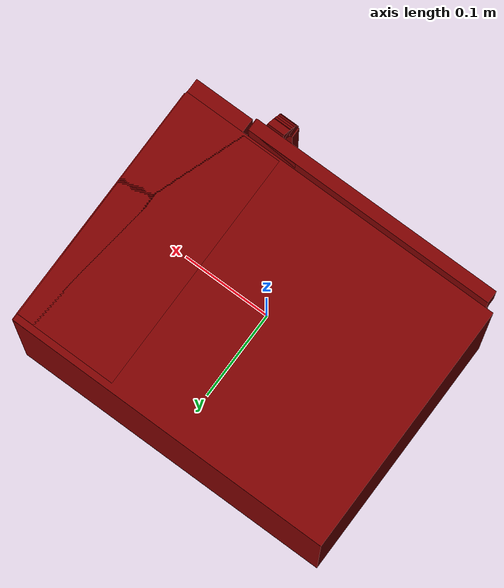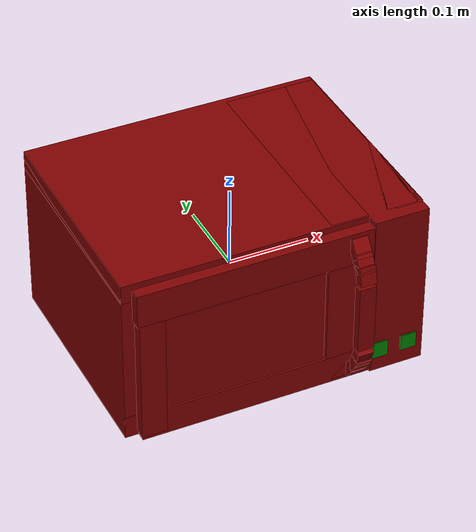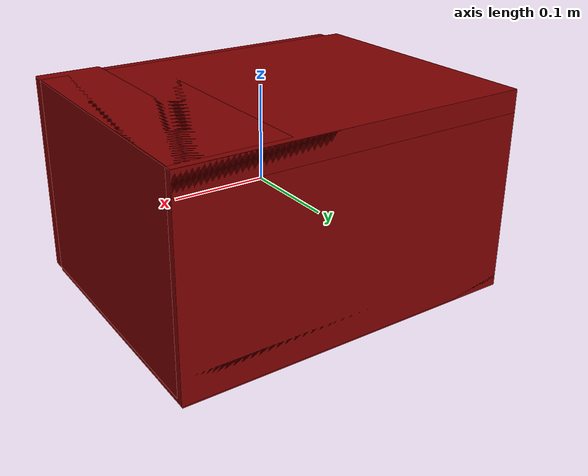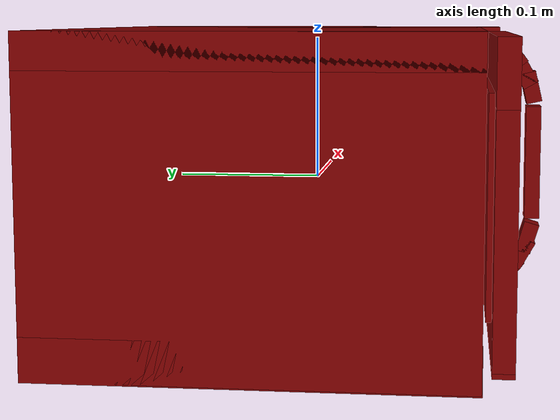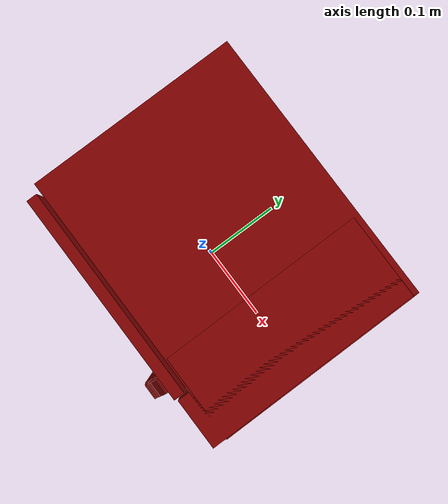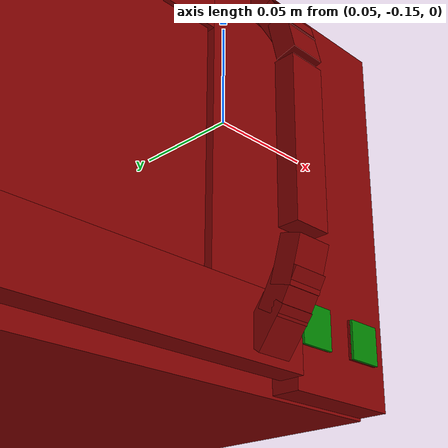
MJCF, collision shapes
<mujoco model="model">
  <compiler angle="radian"/>
  <asset>
    <mesh file="visuals/door.obj" name="door_vis"/>
    <mesh file="visuals/door_Clear.obj" name="door_Clear_vis"/>
    <mesh file="visuals/Body001.obj" name="Body001_vis"/>
    <mesh file="visuals/Button001.obj" name="Button001_vis"/>
    <mesh file="visuals/Button002.obj" name="Button002_vis"/>
    <mesh file="visuals/Disc001.obj" name="Disc001_vis"/>
    <texture file="visuals/T_BC001.png" name="Body001_material" type="2d"/>
    <material name="Body001_material" rgba="1 1 1 1.0" texture="Body001_material" shininess="0.4472135901451111" specular="0.3103448502657381"/>
    <texture file="visuals/T_BC001.png" name="door_material" type="2d"/>
    <material name="door_material" rgba="1 1 1 1.0" texture="door_material" shininess="0.4472135901451111" specular="0.3103448502657381"/>
    <texture file="visuals/T_BC001.png" name="door_Clear_material" type="2d"/>
    <material name="door_Clear_material" rgba="1 1 1 0.8160355687141418" texture="door_Clear_material" shininess="0.5" specular="0.3103448502657381"/>
    <texture file="visuals/T_BC001.png" name="Button001_material" type="2d"/>
    <material name="Button001_material" rgba="1 1 1 1.0" texture="Button001_material" shininess="0.4472135901451111" specular="0.3103448502657381"/>
    <texture file="visuals/T_BC001.png" name="Button002_material" type="2d"/>
    <material name="Button002_material" rgba="1 1 1 1.0" texture="Button002_material" shininess="0.4472135901451111" specular="0.3103448502657381"/>
    <texture file="visuals/T_BC001.png" name="Disc001_material" type="2d"/>
    <material name="Disc001_material" rgba="1 1 1 1.0" texture="Disc001_material" shininess="0.4472135901451111" specular="0.3103448502657381"/>
  </asset>
  <default>
    <default class="visual">
      <geom conaffinity="0" contype="0" group="1" type="mesh"/>
    </default>
    <default class="collision">
      <geom group="0" rgba="0.5 0 0 0.5"/>
    </default>
    <default class="spawn">
      <geom group="0" rgba="1 1 1 0.5" contype="0" conaffinity="0"/>
      <site group="0" rgba="1 1 1 0.5"/>
    </default>
    <default class="region">
      <geom group="1" conaffinity="0" contype="0" rgba="0 1 0 0"/>
    </default>
  </default>
  <worldbody>
    <body>
      <body name="object">
        <geom class="collision" type="box" pos="-0.038322221487760544 0.01331232488155365 -0.06846892833709717" size="0.08991152793169022 0.08991152793169022 0.0033757351338863373" quat="1.0 0.0 0.0 0.0" name="tray" rgba="0 1 0 0.5"/>
        <geom class="collision" type="box" pos="0.16356220841407776 -0.13681288063526154 -0.07364647090435028" size="0.009857509285211563 0.0006622439250349998 0.0102011077105999" quat="1.0 0.0 0.0 0.0" name="stop_button" rgba="0.0 0.5 0 0.5"/>
        <geom class="collision" type="box" pos="0.1264706701040268 -0.13681288063526154 -0.0734160840511322" size="0.010131612420082092 0.0006923375185579062 0.010516528971493244" quat="1.0 0.0 0.0 0.0" name="start_button" rgba="0.0 0.5 0 0.5"/>
        <geom mesh="Body001_vis" type="mesh" solimp="0.998 0.998 0.001" solref="0.001 1" density="100" friction="0.95 0.3 0.1" class="visual" material="Body001_material"/>
        <geom class="collision" type="box" pos="0.14995276927947998 0.011686988174915314 0.0007714279927313328" size="0.03383536636829376 0.1448349803686142 0.1061663031578064" quat="1.0 0.0 0.0 0.0"/>
        <geom class="collision" type="box" pos="-5.488097667694092e-05 0.14237293601036072 0.0006024762988090515" size="0.18502965569496155 0.02169918827712536 0.10611280798912048" quat="1.0 0.0 0.0 0.0"/>
        <geom class="collision" type="box" pos="0.1275446116924286 0.020843293517827988 0.002690589288249612" size="0.05753994360566139 0.13580413162708282 0.10424714535474777" quat="1.0 0.0 0.0 0.0"/>
        <geom class="collision" type="box" pos="-0.0005093887448310852 0.023414507508277893 -0.09263180941343307" size="0.1845751404762268 0.14065761864185333 0.014305923134088516" quat="1.0 0.0 0.0 0.0"/>
        <geom class="collision" type="box" pos="-0.17161764204502106 0.02357851341366768 0.0003283638507127762" size="0.01346692442893982 0.14049357175827026 0.1064658984541893" quat="1.0 0.0 0.0 0.0"/>
        <geom class="collision" type="box" pos="-0.0005093961954116821 0.023414507508277893 0.09519889950752258" size="0.184575155377388 0.14065761864185333 0.011738832108676434" quat="1.0 0.0 0.0 0.0"/>
        <body name="door">
          <joint axis="0.0 0.0 1.0" pos="-0.17331981658935547 -0.12688307464122772 0.0017627356573939323" limited="true" name="microjoint" range="-1.5707963267948966 0.0" type="hinge" damping="1" frictionloss="1" armature=".01" stiffness="0.05"/>
          <geom mesh="door_vis" type="mesh" solimp="0.998 0.998 0.001" solref="0.001 1" density="100" friction="0.95 0.3 0.1" class="visual" material="door_material"/>
          <geom class="collision" type="box" pos="0.09214727580547333 -0.15892517566680908 0.002447914332151413" size="0.010407112538814545 0.005718341562896967 0.043834466487169266" quat="1.0 0.0 0.0 0.0" name="door_handle"/>
          <geom class="collision" type="box" pos="0.09255407005548477 -0.15091237425804138 -0.0687282606959343" size="0.00994036439806223 0.01179773174226284 0.0063987658359110355" quat="0.864357054233551 -0.5028786063194275 6.948563395781093e-07 7.785951083860709e-08"/>
          <geom class="collision" type="box" pos="-0.15737035870552063 -0.12983489036560059 -0.011614538729190826" size="0.015452967025339603 0.007014425937086344 0.08402258902788162" quat="1.0 0.0 0.0 0.0"/>
          <geom class="collision" type="box" pos="0.08528551459312439 -0.12983489036560059 0.0034724343568086624" size="0.028720015659928322 0.007014427799731493 0.09910953789949417" quat="1.0 0.0 0.0 0.0"/>
          <geom class="collision" type="box" pos="-0.02812574803829193 -0.1298348754644394 -0.08159355819225311" size="0.14378277957439423 0.007014445494860411 0.01768413744866848" quat="1.0 0.0 0.0 0.0"/>
          <geom class="collision" type="box" pos="0.09255407005548477 -0.1414509117603302 -0.08252759277820587" size="0.00994036439806223 0.01179773174226284 0.0068750446662306786" quat="0.8963796496391296 -0.443287193775177 3.6028140470989456e-07 1.4993769070770213e-07"/>
          <geom class="collision" type="box" pos="0.09255407005548477 -0.1560104340314865 -0.056768618524074554" size="0.00994036439806223 0.01179773174226284 0.005911976099014282" quat="0.8013164401054382 -0.5982407331466675 6.814300945734431e-07 1.566538401220896e-07"/>
          <geom class="collision" type="box" pos="-0.03087412565946579 -0.1298348754644394 0.08280901610851288" size="0.1440674066543579 0.007014445494860411 0.021138016134500504" quat="1.0 0.0 0.0 0.0"/>
          <geom class="collision" type="box" pos="0.09255407005548477 -0.15091237425804138 0.07276289165019989" size="0.00994036439806223 0.01179773174226284 0.0063987658359110355" quat="9.661798827664825e-08 -6.952240596547199e-07 -0.5028786063194275 0.864357054233551"/>
          <geom class="collision" type="box" pos="0.09255407005548477 -0.1414509117603302 0.08656223118305206" size="0.00994036439806223 0.01179773174226284 0.0068750446662306786" quat="-2.159216592190205e-07 -6.069331561775471e-07 -0.4432871639728546 0.8963796496391296"/>
          <geom class="collision" type="box" pos="0.09255407005548477 -0.1567826122045517 0.06077610328793526" size="0.00994036439806223 0.01179773174226284 0.005911975167691708" quat="9.991788374463795e-08 -7.618554604960082e-07 -0.6223275661468506 0.7827569246292114"/>
          <body name="door_Clear">
            <geom mesh="door_Clear_vis" type="mesh" solimp="0.998 0.998 0.001" solref="0.001 1" density="100" friction="0.95 0.3 0.1" class="visual" material="door_Clear_material"/>
            <geom class="collision" type="box" pos="-0.04511549323797226 -0.12675240635871887 -0.000756354071199894" size="0.09979288280010223 0.00758172944188118 0.07034865766763687" quat="1.0 0.0 0.0 0.0"/>
          </body>
        </body>
        <body name="Button001">
          <joint axis="0.0 1.0 0.0" pos="0.12650269269943237 -0.13561950623989105 -0.08417055010795593" limited="true" name="Button001_joint" range="0.0 0.0007000000000000001" type="slide" damping="1" frictionloss="1" armature=".01" stiffness="0.05"/>
          <geom mesh="Button001_vis" type="mesh" solimp="0.998 0.998 0.001" solref="0.001 1" density="100" friction="0.95 0.3 0.1" class="visual" material="Button001_material"/>
          <geom class="collision" type="box" pos="0.12613829970359802 -0.1351524293422699 -0.07330216467380524" size="0.010267934761941433 0.0004056144680362195 0.010102362371981144" quat="1.0 0.0 0.0 0.0"/>
        </body>
        <body name="Button002">
          <joint axis="0.0 1.0 0.0" pos="0.16345344483852386 -0.13561950623989105 -0.08423236012458801" limited="true" name="Button002_joint" range="0.0 0.0007000000000000001" type="slide" damping="1" frictionloss="1" armature=".01" stiffness="0.05"/>
          <geom mesh="Button002_vis" type="mesh" solimp="0.998 0.998 0.001" solref="0.001 1" density="100" friction="0.95 0.3 0.1" class="visual" material="Button002_material"/>
          <geom class="collision" type="box" pos="0.1635611206293106 -0.1352623999118805 -0.07359568774700165" size="0.0101539995521307 0.0005155887920409441 0.010180373676121235" quat="1.0 0.0 0.0 0.0"/>
        </body>
        <body name="Disc001">
          <joint axis="0.0 0.0 1.0" pos="-0.037556812167167664 0.013425938785076141 -0.07380274683237076" limited="false" name="Disc001_joint" range="0 360" type="hinge" damping="1" frictionloss="1" armature=".01" stiffness="0.05"/>
          <geom mesh="Disc001_vis" type="mesh" solimp="0.998 0.998 0.001" solref="0.001 1" density="100" friction="0.95 0.3 0.1" class="visual" material="Disc001_material"/>
          <geom class="collision" type="cylinder" pos="-0.03832222893834114 0.012877311557531357 -0.07547159492969513" size="0.08953051269054413 0.002008600626140833" quat="1.9470718370939721e-07 -1.0 0.0 0.0"/>
        </body>
        <geom class="region" name="reg_main" type="box" pos="0.0 0.01372671127319336 0.0" size="0.1850845217704773 0.15034538507461548 0.10693773627281189"/>
        <geom class="region" name="reg_int" type="box" pos="-0.043641120195388794 0.0007248707115650177 0.0019815005362033844" size="0.10947117209434509 0.11269418522715569 0.07626780495047569"/>
      </body>
    </body>
  </worldbody>
  <actuator>
    <motor name="microjoint_actuator" joint="microjoint" gear="5"/>
    <motor name="Button001_joint_actuator" joint="Button001_joint" gear="0.07"/>
    <motor name="Button002_joint_actuator" joint="Button002_joint" gear="0.07"/>
    <motor name="Disc001_joint_actuator" joint="Disc001_joint" gear="10"/>
  </actuator>
</mujoco>
